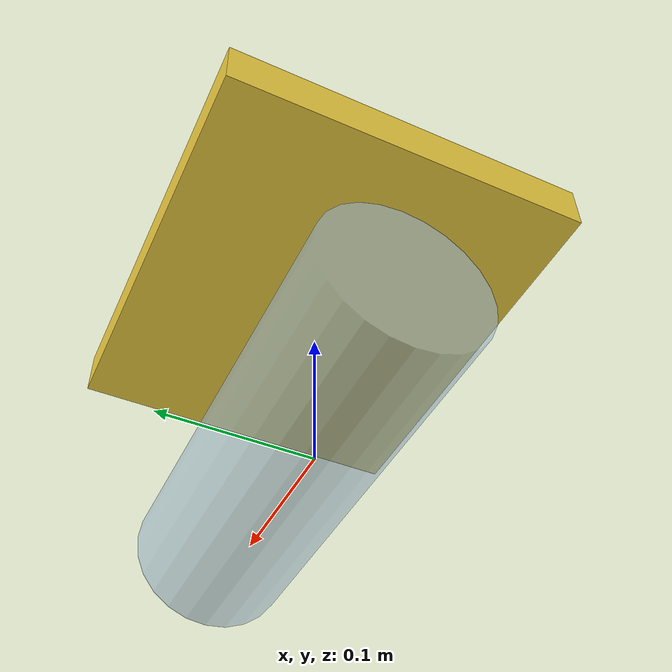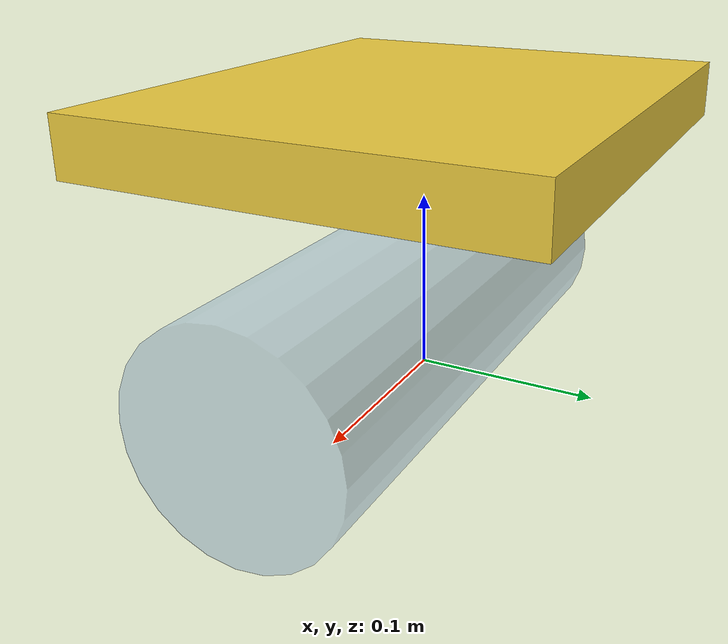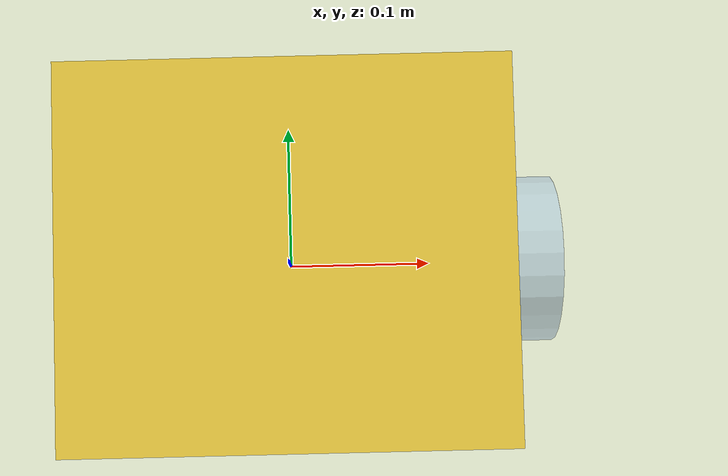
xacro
<?xml version="1.0"?>
<robot xmlns:xacro="http://www.ros.org/wiki/xacro" name="isonavi_rov">

  <!-- Base Link: Chassis & Electronics -->
  <link name="base_link">
    <inertial>
      <origin xyz="0 0 -0.041" rpy="0 0 0"/>
      <mass value="10.490"/>
      <inertia ixx="0.126" ixy="0.0" ixz="0.0" iyy="0.288" iyz="0.0" izz="0.334"/>
    </inertial>

    <visual>
      <origin xyz="0.030 0 0.040" rpy="0 1.5707963 0"/>
      <geometry>
        <cylinder radius="0.057" length="0.300"/>
      </geometry>
      <material name="acrylic">
        <color rgba="0.70 0.82 0.90 0.6"/>
      </material>
    </visual>

    <visual>
      <origin xyz="0 0 0.145" rpy="0 0 0"/>
      <geometry>
        <box size="0.280 0.240 0.032"/>
      </geometry>
      <material name="foam">
        <color rgba="0.93 0.80 0.25 1.0"/>
      </material>
    </visual>

    <collision>
      <origin xyz="0 0 -0.041" rpy="0 0 0"/>
      <geometry>
        <box size="0.600 0.440 0.330"/>
      </geometry>
    </collision>
  </link>

  <!-- Camera Optical Link -->
  <link name="camera_link"/>
  <joint name="camera_joint" type="fixed">
    <parent link="base_link"/>
    <child link="camera_link"/>
    <origin xyz="0.190 0 0.040" rpy="0 0 0"/>
  </joint>

  <!-- IMU Link -->
  <link name="imu_link"/>
  <joint name="imu_joint" type="fixed">
    <parent link="base_link"/>
    <child link="imu_link"/>
    <origin xyz="0 0 0" rpy="0 0 0"/>
  </joint>

  <!-- Thruster Links & Joints for Kinematics -->
  <xacro:macro name="thruster_joint" params="id x y z yaw pitch">
    <link name="thruster_${id}_link"/>
    <joint name="thruster_${id}_joint" type="continuous">
      <parent link="base_link"/>
      <child link="thruster_${id}_link"/>
      <origin xyz="${x} ${y} ${z}" rpy="0 ${pitch} ${yaw}"/>
      <axis xyz="1 0 0"/>
    </joint>
  </xacro:macro>

  <xacro:thruster_joint id="1" x="0.215" y="0.150" z="-0.060" yaw="0.785398" pitch="0"/>
  <xacro:thruster_joint id="2" x="0.215" y="-0.150" z="-0.060" yaw="-0.785398" pitch="0"/>
  <xacro:thruster_joint id="3" x="-0.215" y="0.150" z="-0.060" yaw="-0.785398" pitch="0"/>
  <xacro:thruster_joint id="4" x="-0.215" y="-0.150" z="-0.060" yaw="0.785398" pitch="0"/>
  <xacro:thruster_joint id="5" x="0.130" y="0.155" z="0.100" yaw="0" pitch="-1.570796"/>
  <xacro:thruster_joint id="6" x="0.130" y="-0.155" z="0.100" yaw="0" pitch="-1.570796"/>
  <xacro:thruster_joint id="7" x="-0.130" y="0.155" z="0.100" yaw="0" pitch="-1.570796"/>
  <xacro:thruster_joint id="8" x="-0.130" y="-0.155" z="0.100" yaw="0" pitch="-1.570796"/>

</robot>
